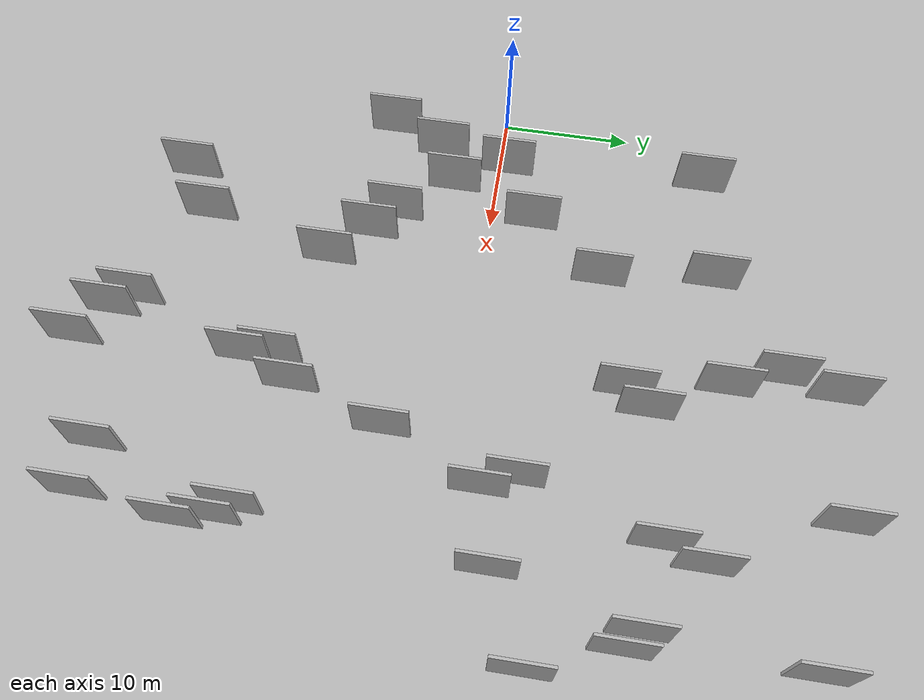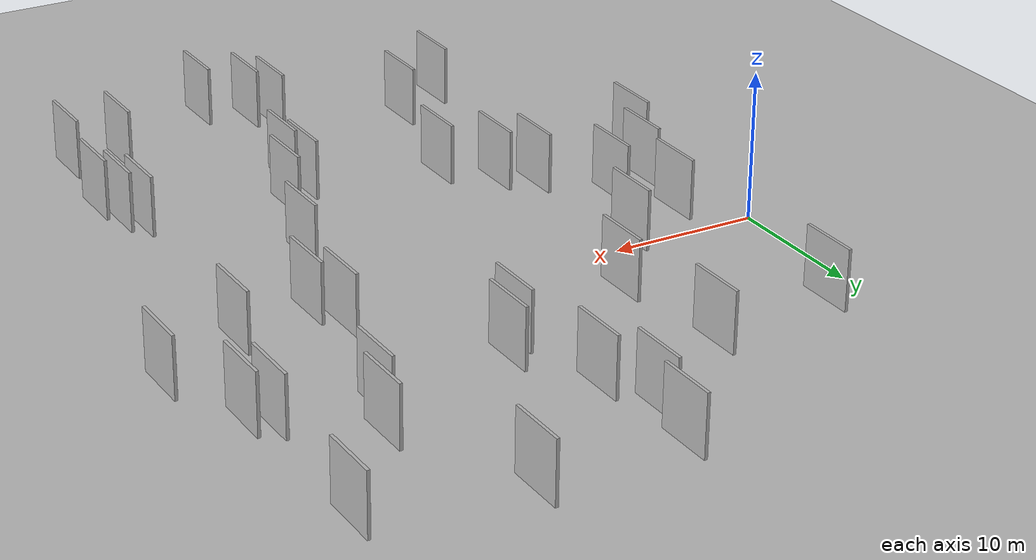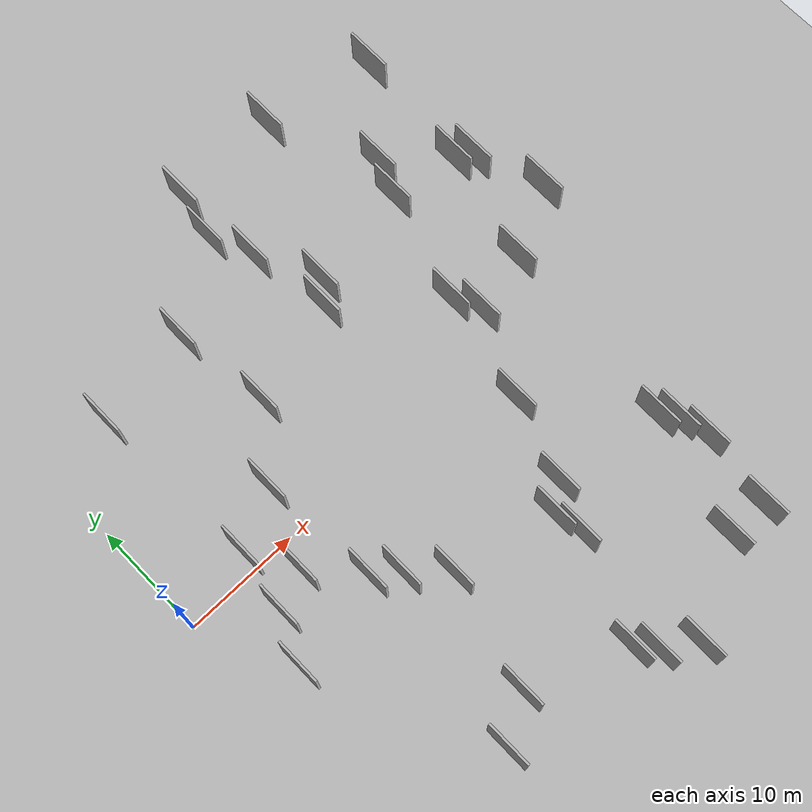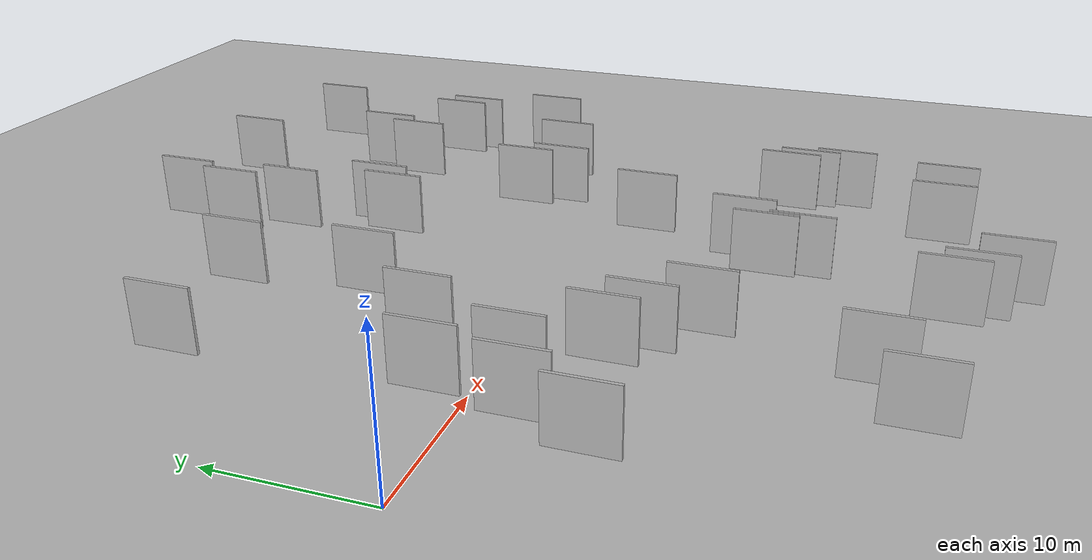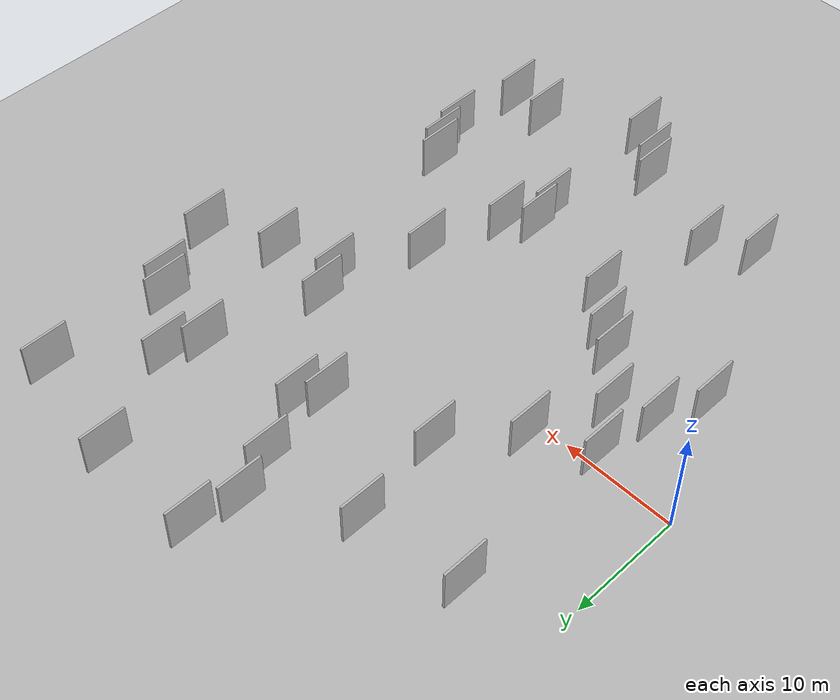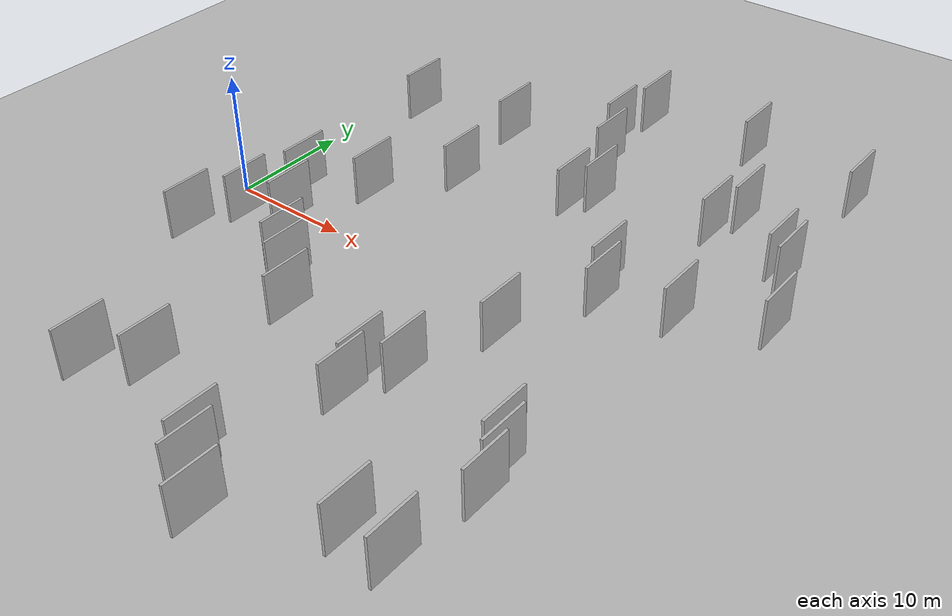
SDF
<?xml version="1.0" encoding="utf-8"?>

<sdf version="1.6">

   <world name="default">

      <gui fullscreen="0">

         <camera name="user_camera">

            <pose>-15 0 4.57585 0 0 0</pose>

            <view_controller>orbit</view_controller>

         </camera>

      </gui>

      <scene>

         <sky>

           <clouds>

             <speed>12</speed>

           </clouds>

         </sky>

         <ambient>0.4 0.4 0.4 1</ambient>

         <background>0.7 0.7 0.7 1</background>

         <shadows>1</shadows>

      </scene>

      <gravity>0 0 -9.8066</gravity>

      <magnetic_field>6e-06 2.3e-05 -4.2e-05</magnetic_field>

      <physics default="0" name="default_physics" type="ode">

         <ode>

            <solver>

               <type>quick</type>

               <iters>10</iters>

               <sor>1.0</sor>

               <use_dynamic_moi_rescaling>0</use_dynamic_moi_rescaling>

            </solver>

            <constraints>

               <cfm>0</cfm>

               <erp>0.2</erp>

               <contact_max_correcting_vel>100</contact_max_correcting_vel>

               <contact_surface_layer>0.001</contact_surface_layer>

            </constraints>

         </ode>

         <max_step_size>0.004</max_step_size>

         <real_time_factor>1</real_time_factor>

         <real_time_update_rate>250</real_time_update_rate>

      </physics>

      <light name="sun" type="directional">

         <cast_shadows>1</cast_shadows>

         <pose>0 0 10 0 0 0</pose>

         <diffuse>0.8 0.8 0.8 1</diffuse>

         <specular>0.2 0.2 0.2 1</specular>

         <attenuation>

            <range>1000</range>

            <constant>0.9</constant>

            <linear>0.01</linear>

            <quadratic>0.001</quadratic>

         </attenuation>

         <direction>-0.5 0.1 -0.9</direction>

      </light>

      <include>

         <name>ground_plane_1</name>

         <uri>model://HANNAS_ground_plane</uri>

         <pose>0 0 0  0 0 0</pose>

      </include>

      <include>

         <name>ground_plane_2</name>

         <uri>model://HANNAS_ground_plane</uri>

         <pose>100 0 0  0 0 0</pose>

      </include>

      <model name="HANNAS_wall_1">

         <static>1</static>

         <pose frame="">32.7581 2.3546 2.5 0.000000 0.000000 1.570796</pose>

         <link name="link">

            <pose frame="">0 0 2.00 0 0 0</pose>

            <collision name="collision">

               <geometry>

                  <box>

                     <size>4.00 0.2 4.00</size>

                  </box>

               </geometry>

               <max_contacts>10</max_contacts>

               <surface>

                  <contact>

                     <ode/>

                  </contact>

                  <bounce/>

                  <friction>

                     <torsional>

                        <ode/>

                     </torsional>

                     <ode/>

                  </friction>

               </surface>

            </collision>

            <visual name="visual">

               <cast_shadows>0</cast_shadows>

               <geometry>

                  <box>

                     <size>4.00 0.2 4.00</size>

                  </box>

               </geometry>

               <material>

                  <script>

                     <uri>model://HANNAS_wall/materials/scripts</uri>

                     <uri>model://HANNAS_wall/materials/textures</uri>

                     <name>vrc/HANNAS_wall</name>

                  </script>

               </material>

            </visual>

            <self_collide>0</self_collide>

            <enable_wind>0</enable_wind>

            <kinematic>0</kinematic>

         </link>

      </model>

      <model name="HANNAS_wall_2">

         <static>1</static>

         <pose frame="">8.6562 -3.0491 2.5 0.000000 0.000000 1.570796</pose>

         <link name="link">

            <pose frame="">0 0 2.00 0 0 0</pose>

            <collision name="collision">

               <geometry>

                  <box>

                     <size>4.00 0.2 4.00</size>

                  </box>

               </geometry>

               <max_contacts>10</max_contacts>

               <surface>

                  <contact>

                     <ode/>

                  </contact>

                  <bounce/>

                  <friction>

                     <torsional>

                        <ode/>

                     </torsional>

                     <ode/>

                  </friction>

               </surface>

            </collision>

            <visual name="visual">

               <cast_shadows>0</cast_shadows>

               <geometry>

                  <box>

                     <size>4.00 0.2 4.00</size>

                  </box>

               </geometry>

               <material>

                  <script>

                     <uri>model://HANNAS_wall/materials/scripts</uri>

                     <uri>model://HANNAS_wall/materials/textures</uri>

                     <name>vrc/HANNAS_wall</name>

                  </script>

               </material>

            </visual>

            <self_collide>0</self_collide>

            <enable_wind>0</enable_wind>

            <kinematic>0</kinematic>

         </link>

      </model>

      <model name="HANNAS_wall_3">

         <static>1</static>

         <pose frame="">24.1383 11.1364 2.5 0.000000 0.000000 1.570796</pose>

         <link name="link">

            <pose frame="">0 0 2.00 0 0 0</pose>

            <collision name="collision">

               <geometry>

                  <box>

                     <size>4.00 0.2 4.00</size>

                  </box>

               </geometry>

               <max_contacts>10</max_contacts>

               <surface>

                  <contact>

                     <ode/>

                  </contact>

                  <bounce/>

                  <friction>

                     <torsional>

                        <ode/>

                     </torsional>

                     <ode/>

                  </friction>

               </surface>

            </collision>

            <visual name="visual">

               <cast_shadows>0</cast_shadows>

               <geometry>

                  <box>

                     <size>4.00 0.2 4.00</size>

                  </box>

               </geometry>

               <material>

                  <script>

                     <uri>model://HANNAS_wall/materials/scripts</uri>

                     <uri>model://HANNAS_wall/materials/textures</uri>

                     <name>vrc/HANNAS_wall</name>

                  </script>

               </material>

            </visual>

            <self_collide>0</self_collide>

            <enable_wind>0</enable_wind>

            <kinematic>0</kinematic>

         </link>

      </model>

      <model name="HANNAS_wall_4">

         <static>1</static>

         <pose frame="">25.6784 -15.3537 2.5 0.000000 0.000000 1.570796</pose>

         <link name="link">

            <pose frame="">0 0 2.00 0 0 0</pose>

            <collision name="collision">

               <geometry>

                  <box>

                     <size>4.00 0.2 4.00</size>

                  </box>

               </geometry>

               <max_contacts>10</max_contacts>

               <surface>

                  <contact>

                     <ode/>

                  </contact>

                  <bounce/>

                  <friction>

                     <torsional>

                        <ode/>

                     </torsional>

                     <ode/>

                  </friction>

               </surface>

            </collision>

            <visual name="visual">

               <cast_shadows>0</cast_shadows>

               <geometry>

                  <box>

                     <size>4.00 0.2 4.00</size>

                  </box>

               </geometry>

               <material>

                  <script>

                     <uri>model://HANNAS_wall/materials/scripts</uri>

                     <uri>model://HANNAS_wall/materials/textures</uri>

                     <name>vrc/HANNAS_wall</name>

                  </script>

               </material>

            </visual>

            <self_collide>0</self_collide>

            <enable_wind>0</enable_wind>

            <kinematic>0</kinematic>

         </link>

      </model>

      <model name="HANNAS_wall_5">

         <static>1</static>

         <pose frame="">23.4787 -25.5595 2.5 0.000000 0.000000 1.570796</pose>

         <link name="link">

            <pose frame="">0 0 2.00 0 0 0</pose>

            <collision name="collision">

               <geometry>

                  <box>

                     <size>4.00 0.2 4.00</size>

                  </box>

               </geometry>

               <max_contacts>10</max_contacts>

               <surface>

                  <contact>

                     <ode/>

                  </contact>

                  <bounce/>

                  <friction>

                     <torsional>

                        <ode/>

                     </torsional>

                     <ode/>

                  </friction>

               </surface>

            </collision>

            <visual name="visual">

               <cast_shadows>0</cast_shadows>

               <geometry>

                  <box>

                     <size>4.00 0.2 4.00</size>

                  </box>

               </geometry>

               <material>

                  <script>

                     <uri>model://HANNAS_wall/materials/scripts</uri>

                     <uri>model://HANNAS_wall/materials/textures</uri>

                     <name>vrc/HANNAS_wall</name>

                  </script>

               </material>

            </visual>

            <self_collide>0</self_collide>

            <enable_wind>0</enable_wind>

            <kinematic>0</kinematic>

         </link>

      </model>

      <model name="HANNAS_wall_6">

         <static>1</static>

         <pose frame="">37.9805 -16.8099 2.5 0.000000 0.000000 1.570796</pose>

         <link name="link">

            <pose frame="">0 0 2.00 0 0 0</pose>

            <collision name="collision">

               <geometry>

                  <box>

                     <size>4.00 0.2 4.00</size>

                  </box>

               </geometry>

               <max_contacts>10</max_contacts>

               <surface>

                  <contact>

                     <ode/>

                  </contact>

                  <bounce/>

                  <friction>

                     <torsional>

                        <ode/>

                     </torsional>

                     <ode/>

                  </friction>

               </surface>

            </collision>

            <visual name="visual">

               <cast_shadows>0</cast_shadows>

               <geometry>

                  <box>

                     <size>4.00 0.2 4.00</size>

                  </box>

               </geometry>

               <material>

                  <script>

                     <uri>model://HANNAS_wall/materials/scripts</uri>

                     <uri>model://HANNAS_wall/materials/textures</uri>

                     <name>vrc/HANNAS_wall</name>

                  </script>

               </material>

            </visual>

            <self_collide>0</self_collide>

            <enable_wind>0</enable_wind>

            <kinematic>0</kinematic>

         </link>

      </model>

      <model name="HANNAS_wall_7">

         <static>1</static>

         <pose frame="">25.4953 12.7898 2.5 0.000000 0.000000 1.570796</pose>

         <link name="link">

            <pose frame="">0 0 2.00 0 0 0</pose>

            <collision name="collision">

               <geometry>

                  <box>

                     <size>4.00 0.2 4.00</size>

                  </box>

               </geometry>

               <max_contacts>10</max_contacts>

               <surface>

                  <contact>

                     <ode/>

                  </contact>

                  <bounce/>

                  <friction>

                     <torsional>

                        <ode/>

                     </torsional>

                     <ode/>

                  </friction>

               </surface>

            </collision>

            <visual name="visual">

               <cast_shadows>0</cast_shadows>

               <geometry>

                  <box>

                     <size>4.00 0.2 4.00</size>

                  </box>

               </geometry>

               <material>

                  <script>

                     <uri>model://HANNAS_wall/materials/scripts</uri>

                     <uri>model://HANNAS_wall/materials/textures</uri>

                     <name>vrc/HANNAS_wall</name>

                  </script>

               </material>

            </visual>

            <self_collide>0</self_collide>

            <enable_wind>0</enable_wind>

            <kinematic>0</kinematic>

         </link>

      </model>

      <model name="HANNAS_wall_8">

         <static>1</static>

         <pose frame="">5.5047 -4.4223 2.5 0.000000 0.000000 1.570796</pose>

         <link name="link">

            <pose frame="">0 0 2.00 0 0 0</pose>

            <collision name="collision">

               <geometry>

                  <box>

                     <size>4.00 0.2 4.00</size>

                  </box>

               </geometry>

               <max_contacts>10</max_contacts>

               <surface>

                  <contact>

                     <ode/>

                  </contact>

                  <bounce/>

                  <friction>

                     <torsional>

                        <ode/>

                     </torsional>

                     <ode/>

                  </friction>

               </surface>

            </collision>

            <visual name="visual">

               <cast_shadows>0</cast_shadows>

               <geometry>

                  <box>

                     <size>4.00 0.2 4.00</size>

                  </box>

               </geometry>

               <material>

                  <script>

                     <uri>model://HANNAS_wall/materials/scripts</uri>

                     <uri>model://HANNAS_wall/materials/textures</uri>

                     <name>vrc/HANNAS_wall</name>

                  </script>

               </material>

            </visual>

            <self_collide>0</self_collide>

            <enable_wind>0</enable_wind>

            <kinematic>0</kinematic>

         </link>

      </model>

      <model name="HANNAS_wall_9">

         <static>1</static>

         <pose frame="">6.4221 0.7579 2.5 0.000000 0.000000 1.570796</pose>

         <link name="link">

            <pose frame="">0 0 2.00 0 0 0</pose>

            <collision name="collision">

               <geometry>

                  <box>

                     <size>4.00 0.2 4.00</size>

                  </box>

               </geometry>

               <max_contacts>10</max_contacts>

               <surface>

                  <contact>

                     <ode/>

                  </contact>

                  <bounce/>

                  <friction>

                     <torsional>

                        <ode/>

                     </torsional>

                     <ode/>

                  </friction>

               </surface>

            </collision>

            <visual name="visual">

               <cast_shadows>0</cast_shadows>

               <geometry>

                  <box>

                     <size>4.00 0.2 4.00</size>

                  </box>

               </geometry>

               <material>

                  <script>

                     <uri>model://HANNAS_wall/materials/scripts</uri>

                     <uri>model://HANNAS_wall/materials/textures</uri>

                     <name>vrc/HANNAS_wall</name>

                  </script>

               </material>

            </visual>

            <self_collide>0</self_collide>

            <enable_wind>0</enable_wind>

            <kinematic>0</kinematic>

         </link>

      </model>

      <model name="HANNAS_wall_10">

         <static>1</static>

         <pose frame="">27.3374 -11.5557 2.5 0.000000 0.000000 1.570796</pose>

         <link name="link">

            <pose frame="">0 0 2.00 0 0 0</pose>

            <collision name="collision">

               <geometry>

                  <box>

                     <size>4.00 0.2 4.00</size>

                  </box>

               </geometry>

               <max_contacts>10</max_contacts>

               <surface>

                  <contact>

                     <ode/>

                  </contact>

                  <bounce/>

                  <friction>

                     <torsional>

                        <ode/>

                     </torsional>

                     <ode/>

                  </friction>

               </surface>

            </collision>

            <visual name="visual">

               <cast_shadows>0</cast_shadows>

               <geometry>

                  <box>

                     <size>4.00 0.2 4.00</size>

                  </box>

               </geometry>

               <material>

                  <script>

                     <uri>model://HANNAS_wall/materials/scripts</uri>

                     <uri>model://HANNAS_wall/materials/textures</uri>

                     <name>vrc/HANNAS_wall</name>

                  </script>

               </material>

            </visual>

            <self_collide>0</self_collide>

            <enable_wind>0</enable_wind>

            <kinematic>0</kinematic>

         </link>

      </model>

      <model name="HANNAS_wall_11">

         <static>1</static>

         <pose frame="">40.3491 13.2252 2.5 0.000000 0.000000 1.570796</pose>

         <link name="link">

            <pose frame="">0 0 2.00 0 0 0</pose>

            <collision name="collision">

               <geometry>

                  <box>

                     <size>4.00 0.2 4.00</size>

                  </box>

               </geometry>

               <max_contacts>10</max_contacts>

               <surface>

                  <contact>

                     <ode/>

                  </contact>

                  <bounce/>

                  <friction>

                     <torsional>

                        <ode/>

                     </torsional>

                     <ode/>

                  </friction>

               </surface>

            </collision>

            <visual name="visual">

               <cast_shadows>0</cast_shadows>

               <geometry>

                  <box>

                     <size>4.00 0.2 4.00</size>

                  </box>

               </geometry>

               <material>

                  <script>

                     <uri>model://HANNAS_wall/materials/scripts</uri>

                     <uri>model://HANNAS_wall/materials/textures</uri>

                     <name>vrc/HANNAS_wall</name>

                  </script>

               </material>

            </visual>

            <self_collide>0</self_collide>

            <enable_wind>0</enable_wind>

            <kinematic>0</kinematic>

         </link>

      </model>

      <model name="HANNAS_wall_12">

         <static>1</static>

         <pose frame="">31.5262 25.8733 2.5 0.000000 0.000000 1.570796</pose>

         <link name="link">

            <pose frame="">0 0 2.00 0 0 0</pose>

            <collision name="collision">

               <geometry>

                  <box>

                     <size>4.00 0.2 4.00</size>

                  </box>

               </geometry>

               <max_contacts>10</max_contacts>

               <surface>

                  <contact>

                     <ode/>

                  </contact>

                  <bounce/>

                  <friction>

                     <torsional>

                        <ode/>

                     </torsional>

                     <ode/>

                  </friction>

               </surface>

            </collision>

            <visual name="visual">

               <cast_shadows>0</cast_shadows>

               <geometry>

                  <box>

                     <size>4.00 0.2 4.00</size>

                  </box>

               </geometry>

               <material>

                  <script>

                     <uri>model://HANNAS_wall/materials/scripts</uri>

                     <uri>model://HANNAS_wall/materials/textures</uri>

                     <name>vrc/HANNAS_wall</name>

                  </script>

               </material>

            </visual>

            <self_collide>0</self_collide>

            <enable_wind>0</enable_wind>

            <kinematic>0</kinematic>

         </link>

      </model>

      <model name="HANNAS_wall_13">

         <static>1</static>

         <pose frame="">41.1789 23.9915 2.5 0.000000 0.000000 1.570796</pose>

         <link name="link">

            <pose frame="">0 0 2.00 0 0 0</pose>

            <collision name="collision">

               <geometry>

                  <box>

                     <size>4.00 0.2 4.00</size>

                  </box>

               </geometry>

               <max_contacts>10</max_contacts>

               <surface>

                  <contact>

                     <ode/>

                  </contact>

                  <bounce/>

                  <friction>

                     <torsional>

                        <ode/>

                     </torsional>

                     <ode/>

                  </friction>

               </surface>

            </collision>

            <visual name="visual">

               <cast_shadows>0</cast_shadows>

               <geometry>

                  <box>

                     <size>4.00 0.2 4.00</size>

                  </box>

               </geometry>

               <material>

                  <script>

                     <uri>model://HANNAS_wall/materials/scripts</uri>

                     <uri>model://HANNAS_wall/materials/textures</uri>

                     <name>vrc/HANNAS_wall</name>

                  </script>

               </material>

            </visual>

            <self_collide>0</self_collide>

            <enable_wind>0</enable_wind>

            <kinematic>0</kinematic>

         </link>

      </model>

      <model name="HANNAS_wall_14">

         <static>1</static>

         <pose frame="">33.6461 -23.3354 2.5 0.000000 0.000000 1.570796</pose>

         <link name="link">

            <pose frame="">0 0 2.00 0 0 0</pose>

            <collision name="collision">

               <geometry>

                  <box>

                     <size>4.00 0.2 4.00</size>

                  </box>

               </geometry>

               <max_contacts>10</max_contacts>

               <surface>

                  <contact>

                     <ode/>

                  </contact>

                  <bounce/>

                  <friction>

                     <torsional>

                        <ode/>

                     </torsional>

                     <ode/>

                  </friction>

               </surface>

            </collision>

            <visual name="visual">

               <cast_shadows>0</cast_shadows>

               <geometry>

                  <box>

                     <size>4.00 0.2 4.00</size>

                  </box>

               </geometry>

               <material>

                  <script>

                     <uri>model://HANNAS_wall/materials/scripts</uri>

                     <uri>model://HANNAS_wall/materials/textures</uri>

                     <name>vrc/HANNAS_wall</name>

                  </script>

               </material>

            </visual>

            <self_collide>0</self_collide>

            <enable_wind>0</enable_wind>

            <kinematic>0</kinematic>

         </link>

      </model>

      <model name="HANNAS_wall_15">

         <static>1</static>

         <pose frame="">13.9389 -8.5073 2.5 0.000000 0.000000 1.570796</pose>

         <link name="link">

            <pose frame="">0 0 2.00 0 0 0</pose>

            <collision name="collision">

               <geometry>

                  <box>

                     <size>4.00 0.2 4.00</size>

                  </box>

               </geometry>

               <max_contacts>10</max_contacts>

               <surface>

                  <contact>

                     <ode/>

                  </contact>

                  <bounce/>

                  <friction>

                     <torsional>

                        <ode/>

                     </torsional>

                     <ode/>

                  </friction>

               </surface>

            </collision>

            <visual name="visual">

               <cast_shadows>0</cast_shadows>

               <geometry>

                  <box>

                     <size>4.00 0.2 4.00</size>

                  </box>

               </geometry>

               <material>

                  <script>

                     <uri>model://HANNAS_wall/materials/scripts</uri>

                     <uri>model://HANNAS_wall/materials/textures</uri>

                     <name>vrc/HANNAS_wall</name>

                  </script>

               </material>

            </visual>

            <self_collide>0</self_collide>

            <enable_wind>0</enable_wind>

            <kinematic>0</kinematic>

         </link>

      </model>

      <model name="HANNAS_wall_16">

         <static>1</static>

         <pose frame="">41.5530 12.2592 2.5 0.000000 0.000000 1.570796</pose>

         <link name="link">

            <pose frame="">0 0 2.00 0 0 0</pose>

            <collision name="collision">

               <geometry>

                  <box>

                     <size>4.00 0.2 4.00</size>

                  </box>

               </geometry>

               <max_contacts>10</max_contacts>

               <surface>

                  <contact>

                     <ode/>

                  </contact>

                  <bounce/>

                  <friction>

                     <torsional>

                        <ode/>

                     </torsional>

                     <ode/>

                  </friction>

               </surface>

            </collision>

            <visual name="visual">

               <cast_shadows>0</cast_shadows>

               <geometry>

                  <box>

                     <size>4.00 0.2 4.00</size>

                  </box>

               </geometry>

               <material>

                  <script>

                     <uri>model://HANNAS_wall/materials/scripts</uri>

                     <uri>model://HANNAS_wall/materials/textures</uri>

                     <name>vrc/HANNAS_wall</name>

                  </script>

               </material>

            </visual>

            <self_collide>0</self_collide>

            <enable_wind>0</enable_wind>

            <kinematic>0</kinematic>

         </link>

      </model>

      <model name="HANNAS_wall_17">

         <static>1</static>

         <pose frame="">14.2192 -20.8193 2.5 0.000000 0.000000 1.570796</pose>

         <link name="link">

            <pose frame="">0 0 2.00 0 0 0</pose>

            <collision name="collision">

               <geometry>

                  <box>

                     <size>4.00 0.2 4.00</size>

                  </box>

               </geometry>

               <max_contacts>10</max_contacts>

               <surface>

                  <contact>

                     <ode/>

                  </contact>

                  <bounce/>

                  <friction>

                     <torsional>

                        <ode/>

                     </torsional>

                     <ode/>

                  </friction>

               </surface>

            </collision>

            <visual name="visual">

               <cast_shadows>0</cast_shadows>

               <geometry>

                  <box>

                     <size>4.00 0.2 4.00</size>

                  </box>

               </geometry>

               <material>

                  <script>

                     <uri>model://HANNAS_wall/materials/scripts</uri>

                     <uri>model://HANNAS_wall/materials/textures</uri>

                     <name>vrc/HANNAS_wall</name>

                  </script>

               </material>

            </visual>

            <self_collide>0</self_collide>

            <enable_wind>0</enable_wind>

            <kinematic>0</kinematic>

         </link>

      </model>

      <model name="HANNAS_wall_18">

         <static>1</static>

         <pose frame="">35.6443 17.0689 2.5 0.000000 0.000000 1.570796</pose>

         <link name="link">

            <pose frame="">0 0 2.00 0 0 0</pose>

            <collision name="collision">

               <geometry>

                  <box>

                     <size>4.00 0.2 4.00</size>

                  </box>

               </geometry>

               <max_contacts>10</max_contacts>

               <surface>

                  <contact>

                     <ode/>

                  </contact>

                  <bounce/>

                  <friction>

                     <torsional>

                        <ode/>

                     </torsional>

                     <ode/>

                  </friction>

               </surface>

            </collision>

            <visual name="visual">

               <cast_shadows>0</cast_shadows>

               <geometry>

                  <box>

                     <size>4.00 0.2 4.00</size>

                  </box>

               </geometry>

               <material>

                  <script>

                     <uri>model://HANNAS_wall/materials/scripts</uri>

                     <uri>model://HANNAS_wall/materials/textures</uri>

                     <name>vrc/HANNAS_wall</name>

                  </script>

               </material>

            </visual>

            <self_collide>0</self_collide>

            <enable_wind>0</enable_wind>

            <kinematic>0</kinematic>

         </link>

      </model>

      <model name="HANNAS_wall_19">

         <static>1</static>

         <pose frame="">14.3521 16.7993 2.5 0.000000 0.000000 1.570796</pose>

         <link name="link">

            <pose frame="">0 0 2.00 0 0 0</pose>

            <collision name="collision">

               <geometry>

                  <box>

                     <size>4.00 0.2 4.00</size>

                  </box>

               </geometry>

               <max_contacts>10</max_contacts>

               <surface>

                  <contact>

                     <ode/>

                  </contact>

                  <bounce/>

                  <friction>

                     <torsional>

                        <ode/>

                     </torsional>

                     <ode/>

                  </friction>

               </surface>

            </collision>

            <visual name="visual">

               <cast_shadows>0</cast_shadows>

               <geometry>

                  <box>

                     <size>4.00 0.2 4.00</size>

                  </box>

               </geometry>

               <material>

                  <script>

                     <uri>model://HANNAS_wall/materials/scripts</uri>

                     <uri>model://HANNAS_wall/materials/textures</uri>

                     <name>vrc/HANNAS_wall</name>

                  </script>

               </material>

            </visual>

            <self_collide>0</self_collide>

            <enable_wind>0</enable_wind>

            <kinematic>0</kinematic>

         </link>

      </model>

      <model name="HANNAS_wall_20">

         <static>1</static>

         <pose frame="">21.4699 21.7366 2.5 0.000000 0.000000 1.570796</pose>

         <link name="link">

            <pose frame="">0 0 2.00 0 0 0</pose>

            <collision name="collision">

               <geometry>

                  <box>

                     <size>4.00 0.2 4.00</size>

                  </box>

               </geometry>

               <max_contacts>10</max_contacts>

               <surface>

                  <contact>

                     <ode/>

                  </contact>

                  <bounce/>

                  <friction>

                     <torsional>

                        <ode/>

                     </torsional>

                     <ode/>

                  </friction>

               </surface>

            </collision>

            <visual name="visual">

               <cast_shadows>0</cast_shadows>

               <geometry>

                  <box>

                     <size>4.00 0.2 4.00</size>

                  </box>

               </geometry>

               <material>

                  <script>

                     <uri>model://HANNAS_wall/materials/scripts</uri>

                     <uri>model://HANNAS_wall/materials/textures</uri>

                     <name>vrc/HANNAS_wall</name>

                  </script>

               </material>

            </visual>

            <self_collide>0</self_collide>

            <enable_wind>0</enable_wind>

            <kinematic>0</kinematic>

         </link>

      </model>

      <model name="HANNAS_wall_21">

         <static>1</static>

         <pose frame="">36.4729 -13.1683 2.5 0.000000 0.000000 1.570796</pose>

         <link name="link">

            <pose frame="">0 0 2.00 0 0 0</pose>

            <collision name="collision">

               <geometry>

                  <box>

                     <size>4.00 0.2 4.00</size>

                  </box>

               </geometry>

               <max_contacts>10</max_contacts>

               <surface>

                  <contact>

                     <ode/>

                  </contact>

                  <bounce/>

                  <friction>

                     <torsional>

                        <ode/>

                     </torsional>

                     <ode/>

                  </friction>

               </surface>

            </collision>

            <visual name="visual">

               <cast_shadows>0</cast_shadows>

               <geometry>

                  <box>

                     <size>4.00 0.2 4.00</size>

                  </box>

               </geometry>

               <material>

                  <script>

                     <uri>model://HANNAS_wall/materials/scripts</uri>

                     <uri>model://HANNAS_wall/materials/textures</uri>

                     <name>vrc/HANNAS_wall</name>

                  </script>

               </material>

            </visual>

            <self_collide>0</self_collide>

            <enable_wind>0</enable_wind>

            <kinematic>0</kinematic>

         </link>

      </model>

      <model name="HANNAS_wall_22">

         <static>1</static>

         <pose frame="">11.9929 -6.9453 2.5 0.000000 0.000000 1.570796</pose>

         <link name="link">

            <pose frame="">0 0 2.00 0 0 0</pose>

            <collision name="collision">

               <geometry>

                  <box>

                     <size>4.00 0.2 4.00</size>

                  </box>

               </geometry>

               <max_contacts>10</max_contacts>

               <surface>

                  <contact>

                     <ode/>

                  </contact>

                  <bounce/>

                  <friction>

                     <torsional>

                        <ode/>

                     </torsional>

                     <ode/>

                  </friction>

               </surface>

            </collision>

            <visual name="visual">

               <cast_shadows>0</cast_shadows>

               <geometry>

                  <box>

                     <size>4.00 0.2 4.00</size>

                  </box>

               </geometry>

               <material>

                  <script>

                     <uri>model://HANNAS_wall/materials/scripts</uri>

                     <uri>model://HANNAS_wall/materials/textures</uri>

                     <name>vrc/HANNAS_wall</name>

                  </script>

               </material>

            </visual>

            <self_collide>0</self_collide>

            <enable_wind>0</enable_wind>

            <kinematic>0</kinematic>

         </link>

      </model>

      <model name="HANNAS_wall_23">

         <static>1</static>

         <pose frame="">37.3671 -14.4001 2.5 0.000000 0.000000 1.570796</pose>

         <link name="link">

            <pose frame="">0 0 2.00 0 0 0</pose>

            <collision name="collision">

               <geometry>

                  <box>

                     <size>4.00 0.2 4.00</size>

                  </box>

               </geometry>

               <max_contacts>10</max_contacts>

               <surface>

                  <contact>

                     <ode/>

                  </contact>

                  <bounce/>

                  <friction>

                     <torsional>

                        <ode/>

                     </torsional>

                     <ode/>

                  </friction>

               </surface>

            </collision>

            <visual name="visual">

               <cast_shadows>0</cast_shadows>

               <geometry>

                  <box>

                     <size>4.00 0.2 4.00</size>

                  </box>

               </geometry>

               <material>

                  <script>

                     <uri>model://HANNAS_wall/materials/scripts</uri>

                     <uri>model://HANNAS_wall/materials/textures</uri>

                     <name>vrc/HANNAS_wall</name>

                  </script>

               </material>

            </visual>

            <self_collide>0</self_collide>

            <enable_wind>0</enable_wind>

            <kinematic>0</kinematic>

         </link>

      </model>

      <model name="HANNAS_wall_24">

         <static>1</static>

         <pose frame="">25.2666 -13.2184 2.5 0.000000 0.000000 1.570796</pose>

         <link name="link">

            <pose frame="">0 0 2.00 0 0 0</pose>

            <collision name="collision">

               <geometry>

                  <box>

                     <size>4.00 0.2 4.00</size>

                  </box>

               </geometry>

               <max_contacts>10</max_contacts>

               <surface>

                  <contact>

                     <ode/>

                  </contact>

                  <bounce/>

                  <friction>

                     <torsional>

                        <ode/>

                     </torsional>

                     <ode/>

                  </friction>

               </surface>

            </collision>

            <visual name="visual">

               <cast_shadows>0</cast_shadows>

               <geometry>

                  <box>

                     <size>4.00 0.2 4.00</size>

                  </box>

               </geometry>

               <material>

                  <script>

                     <uri>model://HANNAS_wall/materials/scripts</uri>

                     <uri>model://HANNAS_wall/materials/textures</uri>

                     <name>vrc/HANNAS_wall</name>

                  </script>

               </material>

            </visual>

            <self_collide>0</self_collide>

            <enable_wind>0</enable_wind>

            <kinematic>0</kinematic>

         </link>

      </model>

      <model name="HANNAS_wall_25">

         <static>1</static>

         <pose frame="">29.6081 -4.7098 2.5 0.000000 0.000000 1.570796</pose>

         <link name="link">

            <pose frame="">0 0 2.00 0 0 0</pose>

            <collision name="collision">

               <geometry>

                  <box>

                     <size>4.00 0.2 4.00</size>

                  </box>

               </geometry>

               <max_contacts>10</max_contacts>

               <surface>

                  <contact>

                     <ode/>

                  </contact>

                  <bounce/>

                  <friction>

                     <torsional>

                        <ode/>

                     </torsional>

                     <ode/>

                  </friction>

               </surface>

            </collision>

            <visual name="visual">

               <cast_shadows>0</cast_shadows>

               <geometry>

                  <box>

                     <size>4.00 0.2 4.00</size>

                  </box>

               </geometry>

               <material>

                  <script>

                     <uri>model://HANNAS_wall/materials/scripts</uri>

                     <uri>model://HANNAS_wall/materials/textures</uri>

                     <name>vrc/HANNAS_wall</name>

                  </script>

               </material>

            </visual>

            <self_collide>0</self_collide>

            <enable_wind>0</enable_wind>

            <kinematic>0</kinematic>

         </link>

      </model>

      <model name="HANNAS_wall_26">

         <static>1</static>

         <pose frame="">16.6935 -11.1715 2.5 0.000000 0.000000 1.570796</pose>

         <link name="link">

            <pose frame="">0 0 2.00 0 0 0</pose>

            <collision name="collision">

               <geometry>

                  <box>

                     <size>4.00 0.2 4.00</size>

                  </box>

               </geometry>

               <max_contacts>10</max_contacts>

               <surface>

                  <contact>

                     <ode/>

                  </contact>

                  <bounce/>

                  <friction>

                     <torsional>

                        <ode/>

                     </torsional>

                     <ode/>

                  </friction>

               </surface>

            </collision>

            <visual name="visual">

               <cast_shadows>0</cast_shadows>

               <geometry>

                  <box>

                     <size>4.00 0.2 4.00</size>

                  </box>

               </geometry>

               <material>

                  <script>

                     <uri>model://HANNAS_wall/materials/scripts</uri>

                     <uri>model://HANNAS_wall/materials/textures</uri>

                     <name>vrc/HANNAS_wall</name>

                  </script>

               </material>

            </visual>

            <self_collide>0</self_collide>

            <enable_wind>0</enable_wind>

            <kinematic>0</kinematic>

         </link>

      </model>

      <model name="HANNAS_wall_27">

         <static>1</static>

         <pose frame="">22.9226 18.0525 2.5 0.000000 0.000000 1.570796</pose>

         <link name="link">

            <pose frame="">0 0 2.00 0 0 0</pose>

            <collision name="collision">

               <geometry>

                  <box>

                     <size>4.00 0.2 4.00</size>

                  </box>

               </geometry>

               <max_contacts>10</max_contacts>

               <surface>

                  <contact>

                     <ode/>

                  </contact>

                  <bounce/>

                  <friction>

                     <torsional>

                        <ode/>

                     </torsional>

                     <ode/>

                  </friction>

               </surface>

            </collision>

            <visual name="visual">

               <cast_shadows>0</cast_shadows>

               <geometry>

                  <box>

                     <size>4.00 0.2 4.00</size>

                  </box>

               </geometry>

               <material>

                  <script>

                     <uri>model://HANNAS_wall/materials/scripts</uri>

                     <uri>model://HANNAS_wall/materials/textures</uri>

                     <name>vrc/HANNAS_wall</name>

                  </script>

               </material>

            </visual>

            <self_collide>0</self_collide>

            <enable_wind>0</enable_wind>

            <kinematic>0</kinematic>

         </link>

      </model>

      <model name="HANNAS_wall_28">

         <static>1</static>

         <pose frame="">22.3202 25.6336 2.5 0.000000 0.000000 1.570796</pose>

         <link name="link">

            <pose frame="">0 0 2.00 0 0 0</pose>

            <collision name="collision">

               <geometry>

                  <box>

                     <size>4.00 0.2 4.00</size>

                  </box>

               </geometry>

               <max_contacts>10</max_contacts>

               <surface>

                  <contact>

                     <ode/>

                  </contact>

                  <bounce/>

                  <friction>

                     <torsional>

                        <ode/>

                     </torsional>

                     <ode/>

                  </friction>

               </surface>

            </collision>

            <visual name="visual">

               <cast_shadows>0</cast_shadows>

               <geometry>

                  <box>

                     <size>4.00 0.2 4.00</size>

                  </box>

               </geometry>

               <material>

                  <script>

                     <uri>model://HANNAS_wall/materials/scripts</uri>

                     <uri>model://HANNAS_wall/materials/textures</uri>

                     <name>vrc/HANNAS_wall</name>

                  </script>

               </material>

            </visual>

            <self_collide>0</self_collide>

            <enable_wind>0</enable_wind>

            <kinematic>0</kinematic>

         </link>

      </model>

      <model name="HANNAS_wall_29">

         <static>1</static>

         <pose frame="">22.2831 -24.1253 2.5 0.000000 0.000000 1.570796</pose>

         <link name="link">

            <pose frame="">0 0 2.00 0 0 0</pose>

            <collision name="collision">

               <geometry>

                  <box>

                     <size>4.00 0.2 4.00</size>

                  </box>

               </geometry>

               <max_contacts>10</max_contacts>

               <surface>

                  <contact>

                     <ode/>

                  </contact>

                  <bounce/>

                  <friction>

                     <torsional>

                        <ode/>

                     </torsional>

                     <ode/>

                  </friction>

               </surface>

            </collision>

            <visual name="visual">

               <cast_shadows>0</cast_shadows>

               <geometry>

                  <box>

                     <size>4.00 0.2 4.00</size>

                  </box>

               </geometry>

               <material>

                  <script>

                     <uri>model://HANNAS_wall/materials/scripts</uri>

                     <uri>model://HANNAS_wall/materials/textures</uri>

                     <name>vrc/HANNAS_wall</name>

                  </script>

               </material>

            </visual>

            <self_collide>0</self_collide>

            <enable_wind>0</enable_wind>

            <kinematic>0</kinematic>

         </link>

      </model>

      <model name="HANNAS_wall_30">

         <static>1</static>

         <pose frame="">11.2191 3.2011 2.5 0.000000 0.000000 1.570796</pose>

         <link name="link">

            <pose frame="">0 0 2.00 0 0 0</pose>

            <collision name="collision">

               <geometry>

                  <box>

                     <size>4.00 0.2 4.00</size>

                  </box>

               </geometry>

               <max_contacts>10</max_contacts>

               <surface>

                  <contact>

                     <ode/>

                  </contact>

                  <bounce/>

                  <friction>

                     <torsional>

                        <ode/>

                     </torsional>

                     <ode/>

                  </friction>

               </surface>

            </collision>

            <visual name="visual">

               <cast_shadows>0</cast_shadows>

               <geometry>

                  <box>

                     <size>4.00 0.2 4.00</size>

                  </box>

               </geometry>

               <material>

                  <script>

                     <uri>model://HANNAS_wall/materials/scripts</uri>

                     <uri>model://HANNAS_wall/materials/textures</uri>

                     <name>vrc/HANNAS_wall</name>

                  </script>

               </material>

            </visual>

            <self_collide>0</self_collide>

            <enable_wind>0</enable_wind>

            <kinematic>0</kinematic>

         </link>

      </model>

      <model name="HANNAS_wall_31">

         <static>1</static>

         <pose frame="">43.7247 6.4415 2.5 0.000000 0.000000 1.570796</pose>

         <link name="link">

            <pose frame="">0 0 2.00 0 0 0</pose>

            <collision name="collision">

               <geometry>

                  <box>

                     <size>4.00 0.2 4.00</size>

                  </box>

               </geometry>

               <max_contacts>10</max_contacts>

               <surface>

                  <contact>

                     <ode/>

                  </contact>

                  <bounce/>

                  <friction>

                     <torsional>

                        <ode/>

                     </torsional>

                     <ode/>

                  </friction>

               </surface>

            </collision>

            <visual name="visual">

               <cast_shadows>0</cast_shadows>

               <geometry>

                  <box>

                     <size>4.00 0.2 4.00</size>

                  </box>

               </geometry>

               <material>

                  <script>

                     <uri>model://HANNAS_wall/materials/scripts</uri>

                     <uri>model://HANNAS_wall/materials/textures</uri>

                     <name>vrc/HANNAS_wall</name>

                  </script>

               </material>

            </visual>

            <self_collide>0</self_collide>

            <enable_wind>0</enable_wind>

            <kinematic>0</kinematic>

         </link>

      </model>

      <model name="HANNAS_wall_32">

         <static>1</static>

         <pose frame="">37.9896 3.6165 2.5 0.000000 0.000000 1.570796</pose>

         <link name="link">

            <pose frame="">0 0 2.00 0 0 0</pose>

            <collision name="collision">

               <geometry>

                  <box>

                     <size>4.00 0.2 4.00</size>

                  </box>

               </geometry>

               <max_contacts>10</max_contacts>

               <surface>

                  <contact>

                     <ode/>

                  </contact>

                  <bounce/>

                  <friction>

                     <torsional>

                        <ode/>

                     </torsional>

                     <ode/>

                  </friction>

               </surface>

            </collision>

            <visual name="visual">

               <cast_shadows>0</cast_shadows>

               <geometry>

                  <box>

                     <size>4.00 0.2 4.00</size>

                  </box>

               </geometry>

               <material>

                  <script>

                     <uri>model://HANNAS_wall/materials/scripts</uri>

                     <uri>model://HANNAS_wall/materials/textures</uri>

                     <name>vrc/HANNAS_wall</name>

                  </script>

               </material>

            </visual>

            <self_collide>0</self_collide>

            <enable_wind>0</enable_wind>

            <kinematic>0</kinematic>

         </link>

      </model>

      <model name="HANNAS_wall_33">

         <static>1</static>

         <pose frame="">26.1273 -27.4954 2.5 0.000000 0.000000 1.570796</pose>

         <link name="link">

            <pose frame="">0 0 2.00 0 0 0</pose>

            <collision name="collision">

               <geometry>

                  <box>

                     <size>4.00 0.2 4.00</size>

                  </box>

               </geometry>

               <max_contacts>10</max_contacts>

               <surface>

                  <contact>

                     <ode/>

                  </contact>

                  <bounce/>

                  <friction>

                     <torsional>

                        <ode/>

                     </torsional>

                     <ode/>

                  </friction>

               </surface>

            </collision>

            <visual name="visual">

               <cast_shadows>0</cast_shadows>

               <geometry>

                  <box>

                     <size>4.00 0.2 4.00</size>

                  </box>

               </geometry>

               <material>

                  <script>

                     <uri>model://HANNAS_wall/materials/scripts</uri>

                     <uri>model://HANNAS_wall/materials/textures</uri>

                     <name>vrc/HANNAS_wall</name>

                  </script>

               </material>

            </visual>

            <self_collide>0</self_collide>

            <enable_wind>0</enable_wind>

            <kinematic>0</kinematic>

         </link>

      </model>

      <model name="HANNAS_wall_34">

         <static>1</static>

         <pose frame="">15.4171 8.6782 2.5 0.000000 0.000000 1.570796</pose>

         <link name="link">

            <pose frame="">0 0 2.00 0 0 0</pose>

            <collision name="collision">

               <geometry>

                  <box>

                     <size>4.00 0.2 4.00</size>

                  </box>

               </geometry>

               <max_contacts>10</max_contacts>

               <surface>

                  <contact>

                     <ode/>

                  </contact>

                  <bounce/>

                  <friction>

                     <torsional>

                        <ode/>

                     </torsional>

                     <ode/>

                  </friction>

               </surface>

            </collision>

            <visual name="visual">

               <cast_shadows>0</cast_shadows>

               <geometry>

                  <box>

                     <size>4.00 0.2 4.00</size>

                  </box>

               </geometry>

               <material>

                  <script>

                     <uri>model://HANNAS_wall/materials/scripts</uri>

                     <uri>model://HANNAS_wall/materials/textures</uri>

                     <name>vrc/HANNAS_wall</name>

                  </script>

               </material>

            </visual>

            <self_collide>0</self_collide>

            <enable_wind>0</enable_wind>

            <kinematic>0</kinematic>

         </link>

      </model>

      <model name="HANNAS_wall_35">

         <static>1</static>

         <pose frame="">34.5638 14.2157 2.5 0.000000 0.000000 1.570796</pose>

         <link name="link">

            <pose frame="">0 0 2.00 0 0 0</pose>

            <collision name="collision">

               <geometry>

                  <box>

                     <size>4.00 0.2 4.00</size>

                  </box>

               </geometry>

               <max_contacts>10</max_contacts>

               <surface>

                  <contact>

                     <ode/>

                  </contact>

                  <bounce/>

                  <friction>

                     <torsional>

                        <ode/>

                     </torsional>

                     <ode/>

                  </friction>

               </surface>

            </collision>

            <visual name="visual">

               <cast_shadows>0</cast_shadows>

               <geometry>

                  <box>

                     <size>4.00 0.2 4.00</size>

                  </box>

               </geometry>

               <material>

                  <script>

                     <uri>model://HANNAS_wall/materials/scripts</uri>

                     <uri>model://HANNAS_wall/materials/textures</uri>

                     <name>vrc/HANNAS_wall</name>

                  </script>

               </material>

            </visual>

            <self_collide>0</self_collide>

            <enable_wind>0</enable_wind>

            <kinematic>0</kinematic>

         </link>

      </model>

      <model name="HANNAS_wall_36">

         <static>1</static>

         <pose frame="">5.6922 15.5923 2.5 0.000000 0.000000 1.570796</pose>

         <link name="link">

            <pose frame="">0 0 2.00 0 0 0</pose>

            <collision name="collision">

               <geometry>

                  <box>

                     <size>4.00 0.2 4.00</size>

                  </box>

               </geometry>

               <max_contacts>10</max_contacts>

               <surface>

                  <contact>

                     <ode/>

                  </contact>

                  <bounce/>

                  <friction>

                     <torsional>

                        <ode/>

                     </torsional>

                     <ode/>

                  </friction>

               </surface>

            </collision>

            <visual name="visual">

               <cast_shadows>0</cast_shadows>

               <geometry>

                  <box>

                     <size>4.00 0.2 4.00</size>

                  </box>

               </geometry>

               <material>

                  <script>

                     <uri>model://HANNAS_wall/materials/scripts</uri>

                     <uri>model://HANNAS_wall/materials/textures</uri>

                     <name>vrc/HANNAS_wall</name>

                  </script>

               </material>

            </visual>

            <self_collide>0</self_collide>

            <enable_wind>0</enable_wind>

            <kinematic>0</kinematic>

         </link>

      </model>

      <model name="HANNAS_wall_37">

         <static>1</static>

         <pose frame="">3.7152 -8.4283 2.5 0.000000 0.000000 1.570796</pose>

         <link name="link">

            <pose frame="">0 0 2.00 0 0 0</pose>

            <collision name="collision">

               <geometry>

                  <box>

                     <size>4.00 0.2 4.00</size>

                  </box>

               </geometry>

               <max_contacts>10</max_contacts>

               <surface>

                  <contact>

                     <ode/>

                  </contact>

                  <bounce/>

                  <friction>

                     <torsional>

                        <ode/>

                     </torsional>

                     <ode/>

                  </friction>

               </surface>

            </collision>

            <visual name="visual">

               <cast_shadows>0</cast_shadows>

               <geometry>

                  <box>

                     <size>4.00 0.2 4.00</size>

                  </box>

               </geometry>

               <material>

                  <script>

                     <uri>model://HANNAS_wall/materials/scripts</uri>

                     <uri>model://HANNAS_wall/materials/textures</uri>

                     <name>vrc/HANNAS_wall</name>

                  </script>

               </material>

            </visual>

            <self_collide>0</self_collide>

            <enable_wind>0</enable_wind>

            <kinematic>0</kinematic>

         </link>

      </model>

      <model name="HANNAS_wall_38">

         <static>1</static>

         <pose frame="">31.7195 4.6246 2.5 0.000000 0.000000 1.570796</pose>

         <link name="link">

            <pose frame="">0 0 2.00 0 0 0</pose>

            <collision name="collision">

               <geometry>

                  <box>

                     <size>4.00 0.2 4.00</size>

                  </box>

               </geometry>

               <max_contacts>10</max_contacts>

               <surface>

                  <contact>

                     <ode/>

                  </contact>

                  <bounce/>

                  <friction>

                     <torsional>

                        <ode/>

                     </torsional>

                     <ode/>

                  </friction>

               </surface>

            </collision>

            <visual name="visual">

               <cast_shadows>0</cast_shadows>

               <geometry>

                  <box>

                     <size>4.00 0.2 4.00</size>

                  </box>

               </geometry>

               <material>

                  <script>

                     <uri>model://HANNAS_wall/materials/scripts</uri>

                     <uri>model://HANNAS_wall/materials/textures</uri>

                     <name>vrc/HANNAS_wall</name>

                  </script>

               </material>

            </visual>

            <self_collide>0</self_collide>

            <enable_wind>0</enable_wind>

            <kinematic>0</kinematic>

         </link>

      </model>

      <model name="HANNAS_wall_39">

         <static>1</static>

         <pose frame="">37.1254 -23.5132 2.5 0.000000 0.000000 1.570796</pose>

         <link name="link">

            <pose frame="">0 0 2.00 0 0 0</pose>

            <collision name="collision">

               <geometry>

                  <box>

                     <size>4.00 0.2 4.00</size>

                  </box>

               </geometry>

               <max_contacts>10</max_contacts>

               <surface>

                  <contact>

                     <ode/>

                  </contact>

                  <bounce/>

                  <friction>

                     <torsional>

                        <ode/>

                     </torsional>

                     <ode/>

                  </friction>

               </surface>

            </collision>

            <visual name="visual">

               <cast_shadows>0</cast_shadows>

               <geometry>

                  <box>

                     <size>4.00 0.2 4.00</size>

                  </box>

               </geometry>

               <material>

                  <script>

                     <uri>model://HANNAS_wall/materials/scripts</uri>

                     <uri>model://HANNAS_wall/materials/textures</uri>

                     <name>vrc/HANNAS_wall</name>

                  </script>

               </material>

            </visual>

            <self_collide>0</self_collide>

            <enable_wind>0</enable_wind>

            <kinematic>0</kinematic>

         </link>

      </model>

      <model name="HANNAS_wall_40">

         <static>1</static>

         <pose frame="">10.5223 -23.0525 2.5 0.000000 0.000000 1.570796</pose>

         <link name="link">

            <pose frame="">0 0 2.00 0 0 0</pose>

            <collision name="collision">

               <geometry>

                  <box>

                     <size>4.00 0.2 4.00</size>

                  </box>

               </geometry>

               <max_contacts>10</max_contacts>

               <surface>

                  <contact>

                     <ode/>

                  </contact>

                  <bounce/>

                  <friction>

                     <torsional>

                        <ode/>

                     </torsional>

                     <ode/>

                  </friction>

               </surface>

            </collision>

            <visual name="visual">

               <cast_shadows>0</cast_shadows>

               <geometry>

                  <box>

                     <size>4.00 0.2 4.00</size>

                  </box>

               </geometry>

               <material>

                  <script>

                     <uri>model://HANNAS_wall/materials/scripts</uri>

                     <uri>model://HANNAS_wall/materials/textures</uri>

                     <name>vrc/HANNAS_wall</name>

                  </script>

               </material>

            </visual>

            <self_collide>0</self_collide>

            <enable_wind>0</enable_wind>

            <kinematic>0</kinematic>

         </link>

      </model>

   </world>

</sdf>
